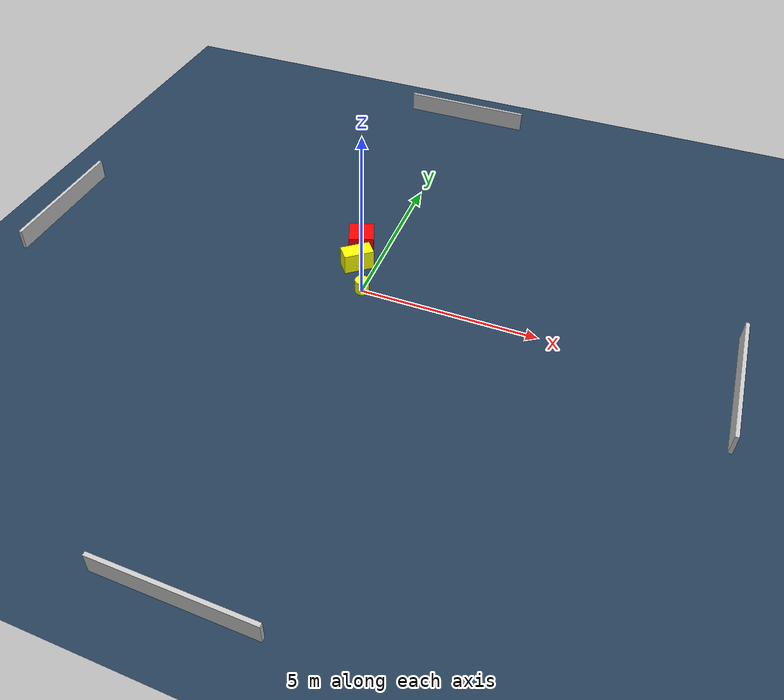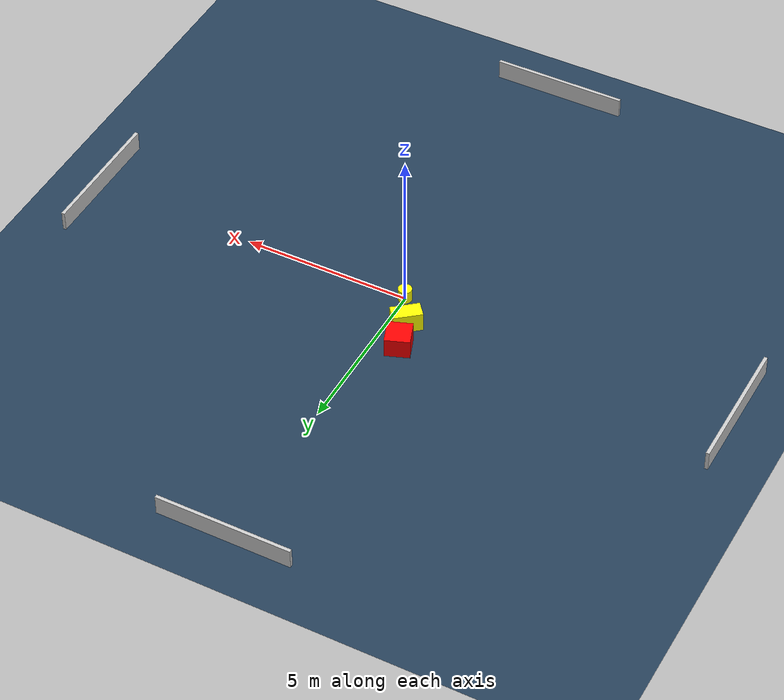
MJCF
<?xml version="1.0" ?>
<mujoco model="generated_environment">
  <option timestep="0.01" integrator="RK4" cone="elliptic"/>
  <default>
    <geom density="1"/>
  </default>
  <asset>
    <texture builtin="gradient" height="3072" name="skybox" rgb1="0.3 0.5 0.7" rgb2="0 0 0" type="skybox" width="512"/>
    <texture builtin="checker" height="300" name="groundplane" rgb1="0.2 0.3 0.4" rgb2="0.1 0.2 0.3" type="2d" width="300"/>
    <material name="groundplane" reflectance="0.2" texrepeat="5 5" texture="groundplane"/>
  </asset>
  <worldbody>
    <light dir="0 0 -1" directional="true" pos="0 0 1.5"/>
    <geom condim="3" friction="0.5 0.005 0.001" material="groundplane" name="floor" pos="0 0 0" size="0 0 0.05" type="plane"/>
    <body name="walls">
      <geom name="wall_1" condim="4" pos="-10.0 0.0 0.3" rgba="0.800000011920929 0.800000011920929 0.800000011920929 1.0" size="0.05 2.0 0.3" type="box"/>
      <geom name="wall_2" condim="4" pos="10.0 0.0 0.3" rgba="0.800000011920929 0.800000011920929 0.800000011920929 1.0" size="0.05 2.0 0.3" type="box"/>
      <geom name="wall_3" condim="4" pos="0.0 -10.0 0.3" rgba="0.800000011920929 0.800000011920929 0.800000011920929 1.0" size="2.0 0.05 0.3" type="box"/>
      <geom name="wall_4" condim="4" pos="0.0 10.0 0.3" rgba="0.800000011920929 0.800000011920929 0.800000011920929 1.0" size="2.0 0.05 0.3" type="box"/>
    </body>
    <body name="robot">
      <joint name="joint_x" type="slide" pos="0 0 0" axis="1 0 0"/>
      <joint name="joint_y" type="slide" pos="0 0 0" axis="0 1 0"/>
      <geom name="robot" type="cylinder" pos="0.0 0.0 0.2" size="0.2 0.2 0.0" mass="5.0" friction="1.0 0.005 0.0001" condim="4" rgba="1.0 1.0 0.0 1.0"/>
    </body>
    <body name="obstacle_1_movable">
      <geom name="obstacle_1_movable" condim="4" pos="-0.5379214947956984 0.9469014950600932 0.3" euler="0 0 129.13766522227704" friction="0.0 0.005 0.001" rgba="1.0 1.0 0.0 1.0" size="0.23482500856201138 0.4326246483289946 0.3" type="box" mass="0.1"/>
      <joint type="free"/>
    </body>
    <body name="obstacle_2_static">
      <geom name="obstacle_2_static" condim="4" pos="-0.7370668064447101 1.775085359381081 0.3" euler="0 0 20.299486528449297" friction="0.0 0.005 0.001" rgba="1.0 0.0 0.0 1.0" size="0.36420467041040355 0.37430494641750367 0.3" type="box"/>
    </body>
  </worldbody>
  <actuator>
    <motor name="actuator_x" joint="joint_x" gear="1" ctrlrange="-1 1"/>
    <motor name="actuator_y" joint="joint_y" gear="1" ctrlrange="-1 1"/>
  </actuator>
</mujoco>
